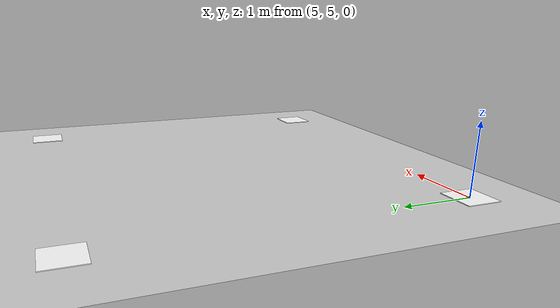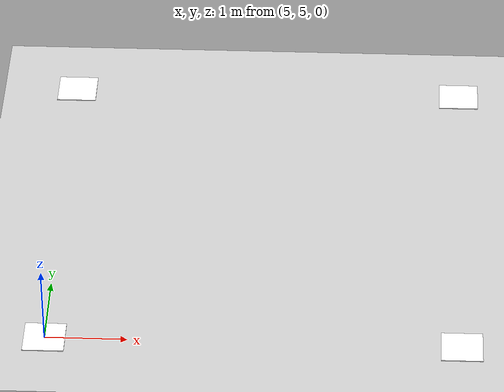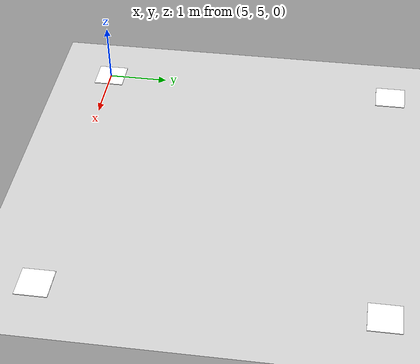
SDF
<sdf version='1.9'>
  <world name='apriltag_testing'>
    <!-- Physics -->
    <physics type="ode">
      <max_step_size>0.004</max_step_size>
      <real_time_factor>1.0</real_time_factor>
      <real_time_update_rate>250</real_time_update_rate>
    </physics>

    <!-- Plugins for Gazebo Sim -->
    <plugin name='gz::sim::systems::Physics' filename='gz-sim-physics-system'/>
    <plugin name='gz::sim::systems::UserCommands' filename='gz-sim-user-commands-system'/>
    <plugin name='gz::sim::systems::SceneBroadcaster' filename='gz-sim-scene-broadcaster-system'/>
    <plugin name='gz::sim::systems::Contact' filename='gz-sim-contact-system'/>
    <plugin name='gz::sim::systems::Imu' filename='gz-sim-imu-system'/>
    <plugin name='gz::sim::systems::AirPressure' filename='gz-sim-air-pressure-system'/>
    <plugin name='gz::sim::systems::Sensors' filename='gz-sim-sensors-system'>
      <render_engine>ogre2</render_engine>
    </plugin>

    <!-- GUI -->
    <gui fullscreen='false'>
      <plugin name='3D View' filename='GzScene3D'>
        <gz-gui>
          <title>3D View</title>
          <property type='bool' key='showTitleBar'>0</property>
          <property type='string' key='state'>docked</property>
        </gz-gui>
        <engine>ogre2</engine>
        <scene>scene</scene>
        <ambient_light>0.5984631152222222 0.5984631152222222 0.5984631152222222</ambient_light>
        <background_color>0.8984631152222222 0.8984631152222222 0.8984631152222222</background_color>
        <camera_pose>-6 0 6 0 0.5 0</camera_pose>
      </plugin>
      <plugin name='World control' filename='WorldControl'>
        <gz-gui>
          <title>World control</title>
          <property type='bool' key='showTitleBar'>0</property>
          <property type='bool' key='resizable'>0</property>
          <property type='double' key='height'>72</property>
          <property type='double' key='width'>121</property>
          <property type='double' key='z'>1</property>
          <property type='string' key='state'>floating</property>
          <anchors target='3D View'>
            <line own='left' target='left'/>
            <line own='bottom' target='bottom'/>
          </anchors>
        </gz-gui>
        <play_pause>1</play_pause>
        <step>1</step>
        <start_paused>1</start_paused>
      </plugin>
      <plugin name='World stats' filename='WorldStats'>
        <gz-gui>
          <title>World stats</title>
          <property type='bool' key='showTitleBar'>0</property>
          <property type='bool' key='resizable'>0</property>
          <property type='double' key='height'>110</property>
          <property type='double' key='width'>290</property>
          <property type='double' key='z'>1</property>
          <property type='string' key='state'>floating</property>
          <anchors target='3D View'>
            <line own='right' target='right'/>
            <line own='bottom' target='bottom'/>
          </anchors>
        </gz-gui>
        <sim_time>1</sim_time>
        <real_time>1</real_time>
        <real_time_factor>1</real_time_factor>
        <iterations>1</iterations>
      </plugin>
      <plugin name='Entity tree' filename='EntityTree'/>
    </gui>

    <!-- Lighting and Scene Settings -->
    <gravity>0 0 -9.8</gravity>
    <magnetic_field>6e-06 2.3e-05 -4.2e-05</magnetic_field>
    <atmosphere type='adiabatic'/>
    <scene>
      <grid>false</grid>
      <ambient>0.4 0.4 0.4 1</ambient>
      <background>0.7 0.7 0.7 1</background>
      <shadows>true</shadows>
    </scene>

    <!-- Ground Plane -->
    <model name='ground_plane'>
      <static>true</static>
      <link name='link'>
        <collision name='collision'>
          <geometry>
            <plane>
              <normal>0 0 1</normal>
              <size>1 1</size>
            </plane>
          </geometry>
          <surface>
            <friction>
              <ode/>
            </friction>
            <bounce/>
            <contact/>
          </surface>
        </collision>
        <visual name='visual'>
          <geometry>
            <plane>
              <normal>0 0 1</normal>
              <size>100 100</size>
            </plane>
          </geometry>
          <material>
            <ambient>0.8 0.8 0.8 1</ambient>
            <diffuse>0.8 0.8 0.8 1</diffuse>
            <specular>0.8 0.8 0.8 1</specular>
          </material>
        </visual>
      </link>
    </model>

    <!-- Sun Light -->
    <light name='sun' type='directional'>
      <pose>0 0 500 0 -0 0</pose>
      <cast_shadows>true</cast_shadows>
      <intensity>1</intensity>
      <direction>0.001 0.625 -0.78</direction>
      <diffuse>0.904 0.904 0.904 1</diffuse>
      <specular>0.271 0.271 0.271 1</specular>
    </light>

    <!-- AprilTag 1 - apriltag_2 rotated 90 degrees (ID 1) -->
    <include>
      <uri>model://apriltag_1</uri>
      <name>apriltag_1</name>
      <pose>5 5 0.01 0 0 1.5708</pose>
    </include>

    <!-- AprilTag 2 - Standing on ground, facing up (ID 1) -->
    <include>
      <uri>model://apriltag_1</uri>
      <name>apriltag_2</name>
      <pose>10 5 0.01 0 0 0</pose>
    </include>

    <!-- AprilTag 3 - apriltag_2 rotated 180 degrees (ID 1) -->
    <include>
      <uri>model://apriltag_1</uri>
      <name>apriltag_3</name>
      <pose>5 10 0.01 0 0 3.1416</pose>
    </include>

    <!-- AprilTag 4 - apriltag_2 rotated 270 degrees (ID 1) -->
    <include>
      <uri>model://apriltag_1</uri>
      <name>apriltag_4</name>
      <pose>10 10 0.01 0 0 4.7124</pose>
    </include>

  </world>
</sdf>

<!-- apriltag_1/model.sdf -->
<sdf version="1.9">
  <model name="apriltag_1">
    <static>true</static>
    <link name="link">
      <visual name="visual">
        <geometry>
          <box>
            <size>0.5 0.5 0.01</size>
          </box>
        </geometry>
        <material>
          <diffuse>1 1 1 1</diffuse>
          <specular>0 0 0 1</specular>
          <pbr>
            <metal>
              <albedo_map>materials/textures/tag16_05_00001_512.png</albedo_map>
              <metalness>0.0</metalness>
              <roughness>0.2</roughness>
            </metal>
          </pbr>
        </material>
      </visual>
      <collision name="collision">
        <geometry>
          <box>
            <size>0.5 0.5 0.01</size>
          </box>
        </geometry>
      </collision>
    </link>
  </model>
</sdf>
